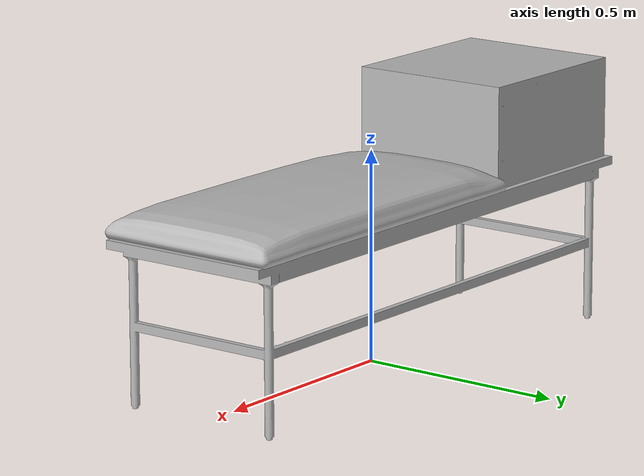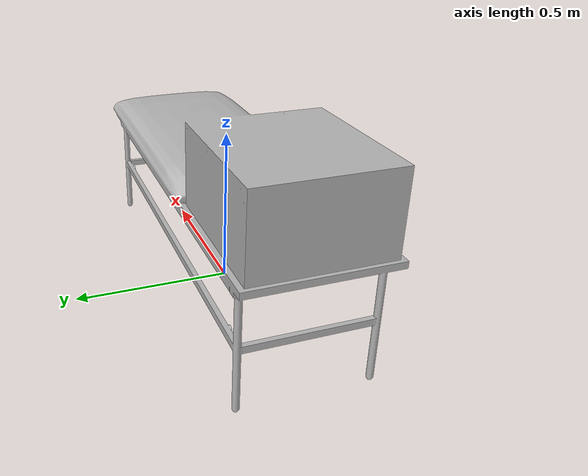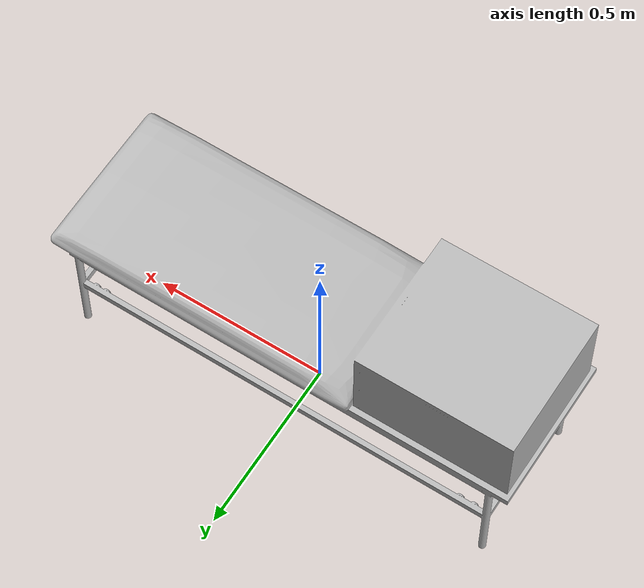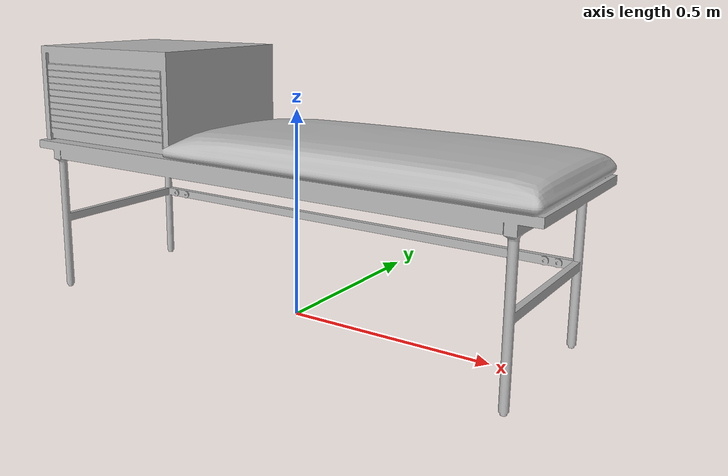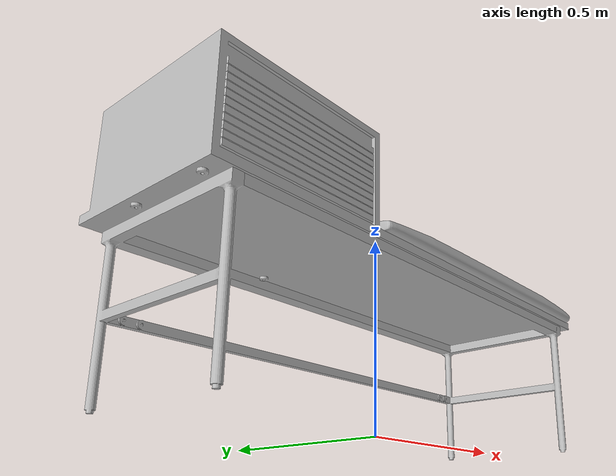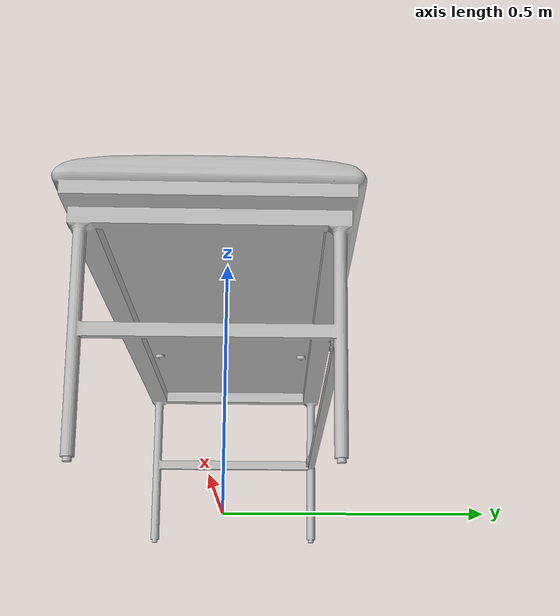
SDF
<sdf version="1.6">
	<model name="VanityBenches_O5f00cb5fcbde_lod0">
		<link name="main_link">
			<visual name="visual_RootNode">
				<geometry>
					<mesh>
						<uri>model://VanityBenches_O5f00cb5fcbde_lod0/meshes/visual_RootNode.dae</uri>
					</mesh>
				</geometry>
			</visual>
			<collision name="collision_RootNode_lod0_0">
				<geometry>
					<mesh>
						<uri>model://VanityBenches_O5f00cb5fcbde_lod0/meshes/collision_RootNode_lod0_0.dae</uri>
					</mesh>
				</geometry>
			</collision>
		</link>
	</model>
</sdf>
